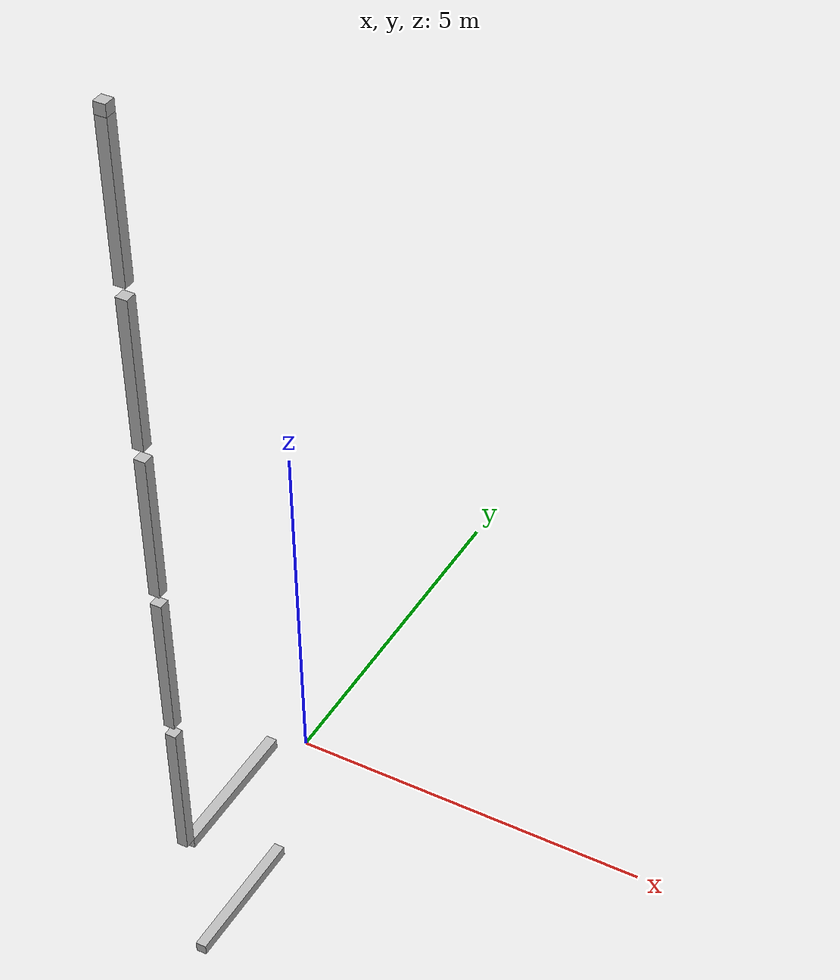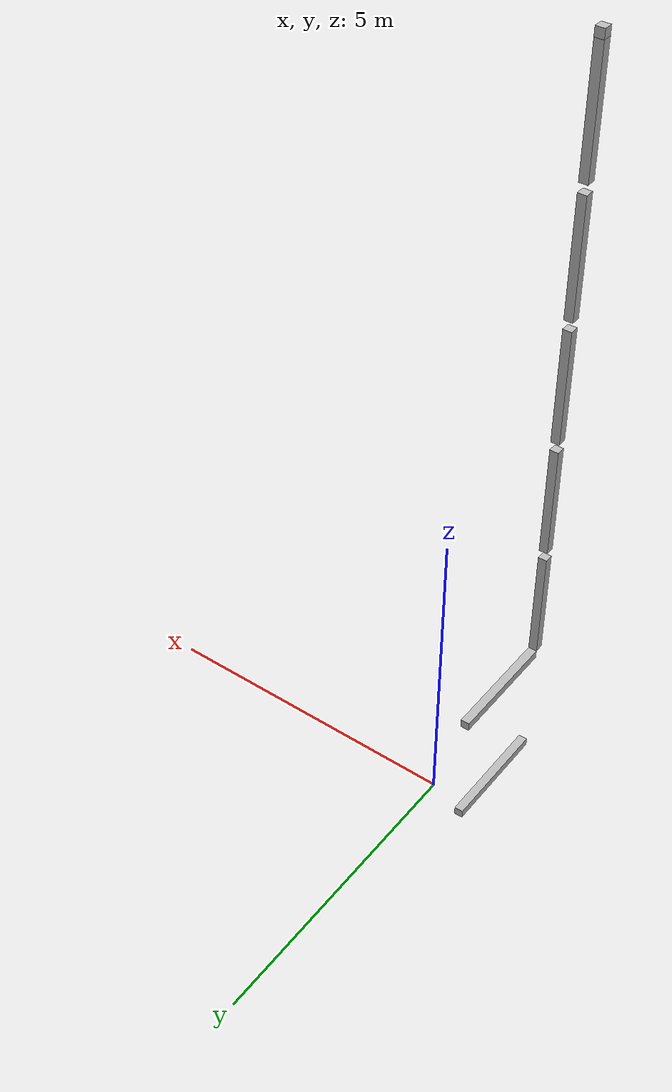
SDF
<sdf version="1.7">
 <world name="default">
  <model name="orthogonal_747_2.000.15_TS">
   <static>1</static>
   <link name="y_link_0_1_3">
    <inertial>
     <mass>1</mass>
     <inertia>
      <ixx>0.166667</ixx>
      <ixy>0</ixy>
      <ixz>0</ixz>
      <iyy>0.166667</iyy>
      <iyz>0</iyz>
      <izz>0.166667</izz>
     </inertia>
    </inertial>
    <pose>6.45 3.225 1.075 0 -0 0</pose>
    <visual name="visual_0">
     <laser_retro>232</laser_retro>
     <geometry><box><size>0.15 1e-06 0.15</size></box></geometry>
     <material>
      <script><name>Gazebo/Grey</name><uri>file://media/materials/scripts/gazebo.material</uri></script>
      <shader type="pixel"><normal_map>__default__</normal_map></shader>
      <ambient>0.678 0.498 0.659 1</ambient>
      <diffuse>0.7 0.7 0.7 1</diffuse>
      <specular>0.01 0.01 0.01 1</specular>
      <emissive>0 0 0 1</emissive>
     </material>
     <pose>0 -1 0 0 -0 0</pose>
     <transparency>1</transparency>
    </visual>
    <visual name="visual_1">
     <laser_retro>233</laser_retro>
     <geometry><box><size>0.15 1e-06 0.15</size></box></geometry>
     <material>
      <script><name>Gazebo/Grey</name><uri>file://media/materials/scripts/gazebo.material</uri></script>
      <shader type="pixel"><normal_map>__default__</normal_map></shader>
      <ambient>0.447 0.624 0.812 1</ambient>
      <diffuse>0.7 0.7 0.7 1</diffuse>
      <specular>0.01 0.01 0.01 1</specular>
      <emissive>0 0 0 1</emissive>
     </material>
     <pose>0 1 0 0 -0 0</pose>
     <transparency>1</transparency>
    </visual>
    <visual name="visual_2">
     <laser_retro>234</laser_retro>
     <geometry><box><size>0.15 2 1e-06</size></box></geometry>
     <material>
      <script><name>Gazebo/Grey</name><uri>file://media/materials/scripts/gazebo.material</uri></script>
      <shader type="pixel"><normal_map>__default__</normal_map></shader>
      <ambient>0.988 0.686 0.243 1</ambient>
      <diffuse>0.7 0.7 0.7 1</diffuse>
      <specular>0.01 0.01 0.01 1</specular>
      <emissive>0 0 0 1</emissive>
     </material>
     <pose>0 0 -0.075 0 -0 0</pose>
     <transparency>1</transparency>
    </visual>
    <visual name="visual_3">
     <laser_retro>235</laser_retro>
     <geometry><box><size>1e-06 2 0.15</size></box></geometry>
     <material>
      <script><name>Gazebo/Grey</name><uri>file://media/materials/scripts/gazebo.material</uri></script>
      <shader type="pixel"><normal_map>__default__</normal_map></shader>
      <ambient>0.988 0.914 0.31 1</ambient>
      <diffuse>0.7 0.7 0.7 1</diffuse>
      <specular>0.01 0.01 0.01 1</specular>
      <emissive>0 0 0 1</emissive>
     </material>
     <pose>0.075 0 0 0 -0 0</pose>
     <transparency>1</transparency>
    </visual>
    <visual name="visual_4">
     <laser_retro>236</laser_retro>
     <geometry><box><size>0.15 2 1e-06</size></box></geometry>
     <material>
      <script><name>Gazebo/Grey</name><uri>file://media/materials/scripts/gazebo.material</uri></script>
      <shader type="pixel"><normal_map>__default__</normal_map></shader>
      <ambient>0.937 0.161 0.161 1</ambient>
      <diffuse>0.7 0.7 0.7 1</diffuse>
      <specular>0.01 0.01 0.01 1</specular>
      <emissive>0 0 0 1</emissive>
     </material>
     <pose>0 0 0.075 0 -0 0</pose>
     <transparency>1</transparency>
    </visual>
    <visual name="visual_5">
     <laser_retro>237</laser_retro>
     <geometry><box><size>1e-06 2 0.15</size></box></geometry>
     <material>
      <script><name>Gazebo/Grey</name><uri>file://media/materials/scripts/gazebo.material</uri></script>
      <shader type="pixel"><normal_map>__default__</normal_map></shader>
      <ambient>0.541 0.886 0.204 1</ambient>
      <diffuse>0.7 0.7 0.7 1</diffuse>
      <specular>0.01 0.01 0.01 1</specular>
      <emissive>0 0 0 1</emissive>
     </material>
     <pose>-0.075 0 0 0 -0 0</pose>
     <transparency>1</transparency>
    </visual>
    <visual name="visual_texture">
     <geometry><box><size>0.149985 1.9998 0.149985</size></box></geometry>
     <material>
      <script>
       <uri>model://BASE_MODELS/simple_block_v2_textured/materials/scripts</uri>
       <uri>model://BASE_MODELS/simple_block_v2_textured/materials/textures</uri>
       <name>metal</name>
      </script>
     </material>
     <laser_retro>238</laser_retro>
    </visual>
    <collision name="collision">
     <geometry><box><size>0.15 2 0.15</size></box></geometry>
     <surface>
      <friction>
       <ode><mu>1</mu><mu2>1</mu2><fdir1>0 0 0</fdir1><slip1>0</slip1><slip2>0</slip2></ode>
       <torsional>
        <coefficient>1</coefficient>
        <patch_radius>0</patch_radius>
        <surface_radius>0</surface_radius>
        <use_patch_radius>1</use_patch_radius>
        <ode><slip>0</slip></ode>
       </torsional>
      </friction>
      <bounce><restitution_coefficient>0</restitution_coefficient><threshold>1e+06</threshold></bounce>
      <contact>
       <collide_without_contact>0</collide_without_contact>
       <collide_without_contact_bitmask>1</collide_without_contact_bitmask>
       <collide_bitmask>1</collide_bitmask>
       <ode>
        <soft_cfm>0</soft_cfm>
        <soft_erp>0.2</soft_erp>
        <kp>1e+13</kp>
        <kd>1</kd>
        <max_vel>0.01</max_vel>
        <min_depth>0</min_depth>
       </ode>
       <bullet>
        <split_impulse>1</split_impulse>
        <split_impulse_penetration_threshold>-0.01</split_impulse_penetration_threshold>
        <soft_cfm>0</soft_cfm>
        <soft_erp>0.2</soft_erp>
        <kp>1e+13</kp>
        <kd>1</kd>
       </bullet>
      </contact>
     </surface>
    </collision>
   </link>
   <link name="y_link_1_1_3">
    <inertial>
     <mass>1</mass>
     <inertia>
      <ixx>0.166667</ixx>
      <ixy>0</ixy>
      <ixz>0</ixz>
      <iyy>0.166667</iyy>
      <iyz>0</iyz>
      <izz>0.166667</izz>
     </inertia>
    </inertial>
    <pose>6.45 3.225 3.225 0 -0 0</pose>
    <visual name="visual_0">
     <laser_retro>1044</laser_retro>
     <geometry><box><size>0.15 1e-06 0.15</size></box></geometry>
     <material>
      <script><name>Gazebo/Grey</name><uri>file://media/materials/scripts/gazebo.material</uri></script>
      <shader type="pixel"><normal_map>__default__</normal_map></shader>
      <ambient>0.678 0.498 0.659 1</ambient>
      <diffuse>0.7 0.7 0.7 1</diffuse>
      <specular>0.01 0.01 0.01 1</specular>
      <emissive>0 0 0 1</emissive>
     </material>
     <pose>0 -1 0 0 -0 0</pose>
     <transparency>1</transparency>
    </visual>
    <visual name="visual_1">
     <laser_retro>1045</laser_retro>
     <geometry><box><size>0.15 1e-06 0.15</size></box></geometry>
     <material>
      <script><name>Gazebo/Grey</name><uri>file://media/materials/scripts/gazebo.material</uri></script>
      <shader type="pixel"><normal_map>__default__</normal_map></shader>
      <ambient>0.447 0.624 0.812 1</ambient>
      <diffuse>0.7 0.7 0.7 1</diffuse>
      <specular>0.01 0.01 0.01 1</specular>
      <emissive>0 0 0 1</emissive>
     </material>
     <pose>0 1 0 0 -0 0</pose>
     <transparency>1</transparency>
    </visual>
    <visual name="visual_2">
     <laser_retro>1046</laser_retro>
     <geometry><box><size>0.15 2 1e-06</size></box></geometry>
     <material>
      <script><name>Gazebo/Grey</name><uri>file://media/materials/scripts/gazebo.material</uri></script>
      <shader type="pixel"><normal_map>__default__</normal_map></shader>
      <ambient>0.988 0.686 0.243 1</ambient>
      <diffuse>0.7 0.7 0.7 1</diffuse>
      <specular>0.01 0.01 0.01 1</specular>
      <emissive>0 0 0 1</emissive>
     </material>
     <pose>0 0 -0.075 0 -0 0</pose>
     <transparency>1</transparency>
    </visual>
    <visual name="visual_3">
     <laser_retro>1047</laser_retro>
     <geometry><box><size>1e-06 2 0.15</size></box></geometry>
     <material>
      <script><name>Gazebo/Grey</name><uri>file://media/materials/scripts/gazebo.material</uri></script>
      <shader type="pixel"><normal_map>__default__</normal_map></shader>
      <ambient>0.988 0.914 0.31 1</ambient>
      <diffuse>0.7 0.7 0.7 1</diffuse>
      <specular>0.01 0.01 0.01 1</specular>
      <emissive>0 0 0 1</emissive>
     </material>
     <pose>0.075 0 0 0 -0 0</pose>
     <transparency>1</transparency>
    </visual>
    <visual name="visual_4">
     <laser_retro>1048</laser_retro>
     <geometry><box><size>0.15 2 1e-06</size></box></geometry>
     <material>
      <script><name>Gazebo/Grey</name><uri>file://media/materials/scripts/gazebo.material</uri></script>
      <shader type="pixel"><normal_map>__default__</normal_map></shader>
      <ambient>0.937 0.161 0.161 1</ambient>
      <diffuse>0.7 0.7 0.7 1</diffuse>
      <specular>0.01 0.01 0.01 1</specular>
      <emissive>0 0 0 1</emissive>
     </material>
     <pose>0 0 0.075 0 -0 0</pose>
     <transparency>1</transparency>
    </visual>
    <visual name="visual_5">
     <laser_retro>1049</laser_retro>
     <geometry><box><size>1e-06 2 0.15</size></box></geometry>
     <material>
      <script><name>Gazebo/Grey</name><uri>file://media/materials/scripts/gazebo.material</uri></script>
      <shader type="pixel"><normal_map>__default__</normal_map></shader>
      <ambient>0.541 0.886 0.204 1</ambient>
      <diffuse>0.7 0.7 0.7 1</diffuse>
      <specular>0.01 0.01 0.01 1</specular>
      <emissive>0 0 0 1</emissive>
     </material>
     <pose>-0.075 0 0 0 -0 0</pose>
     <transparency>1</transparency>
    </visual>
    <visual name="visual_texture">
     <geometry><box><size>0.149985 1.9998 0.149985</size></box></geometry>
     <material>
      <script>
       <uri>model://BASE_MODELS/simple_block_v2_textured/materials/scripts</uri>
       <uri>model://BASE_MODELS/simple_block_v2_textured/materials/textures</uri>
       <name>metal</name>
      </script>
     </material>
     <laser_retro>1050</laser_retro>
    </visual>
    <collision name="collision">
     <geometry><box><size>0.15 2 0.15</size></box></geometry>
     <surface>
      <friction>
       <ode><mu>1</mu><mu2>1</mu2><fdir1>0 0 0</fdir1><slip1>0</slip1><slip2>0</slip2></ode>
       <torsional>
        <coefficient>1</coefficient>
        <patch_radius>0</patch_radius>
        <surface_radius>0</surface_radius>
        <use_patch_radius>1</use_patch_radius>
        <ode><slip>0</slip></ode>
       </torsional>
      </friction>
      <bounce><restitution_coefficient>0</restitution_coefficient><threshold>1e+06</threshold></bounce>
      <contact>
       <collide_without_contact>0</collide_without_contact>
       <collide_without_contact_bitmask>1</collide_without_contact_bitmask>
       <collide_bitmask>1</collide_bitmask>
       <ode>
        <soft_cfm>0</soft_cfm>
        <soft_erp>0.2</soft_erp>
        <kp>1e+13</kp>
        <kd>1</kd>
        <max_vel>0.01</max_vel>
        <min_depth>0</min_depth>
       </ode>
       <bullet>
        <split_impulse>1</split_impulse>
        <split_impulse_penetration_threshold>-0.01</split_impulse_penetration_threshold>
        <soft_cfm>0</soft_cfm>
        <soft_erp>0.2</soft_erp>
        <kp>1e+13</kp>
        <kd>1</kd>
       </bullet>
      </contact>
     </surface>
    </collision>
   </link>
   <link name="z_link_2_1_3">
    <inertial>
     <mass>1</mass>
     <inertia>
      <ixx>0.166667</ixx>
      <ixy>0</ixy>
      <ixz>0</ixz>
      <iyy>0.166667</iyy>
      <iyz>0</iyz>
      <izz>0.166667</izz>
     </inertia>
    </inertial>
    <pose>6.45 2.15 4.3 0 -0 0</pose>
    <visual name="visual_0">
     <laser_retro>1954</laser_retro>
     <geometry><box><size>0.15 1e-06 2</size></box></geometry>
     <material>
      <script><name>Gazebo/Grey</name><uri>file://media/materials/scripts/gazebo.material</uri></script>
      <shader type="pixel"><normal_map>__default__</normal_map></shader>
      <ambient>0.678 0.498 0.659 1</ambient>
      <diffuse>0.7 0.7 0.7 1</diffuse>
      <specular>0.01 0.01 0.01 1</specular>
      <emissive>0 0 0 1</emissive>
     </material>
     <pose>0 -0.075 0 0 -0 0</pose>
     <transparency>1</transparency>
    </visual>
    <visual name="visual_1">
     <laser_retro>1955</laser_retro>
     <geometry><box><size>0.15 1e-06 2</size></box></geometry>
     <material>
      <script><name>Gazebo/Grey</name><uri>file://media/materials/scripts/gazebo.material</uri></script>
      <shader type="pixel"><normal_map>__default__</normal_map></shader>
      <ambient>0.447 0.624 0.812 1</ambient>
      <diffuse>0.7 0.7 0.7 1</diffuse>
      <specular>0.01 0.01 0.01 1</specular>
      <emissive>0 0 0 1</emissive>
     </material>
     <pose>0 0.075 0 0 -0 0</pose>
     <transparency>1</transparency>
    </visual>
    <visual name="visual_2">
     <laser_retro>1956</laser_retro>
     <geometry><box><size>0.15 0.15 1e-06</size></box></geometry>
     <material>
      <script><name>Gazebo/Grey</name><uri>file://media/materials/scripts/gazebo.material</uri></script>
      <shader type="pixel"><normal_map>__default__</normal_map></shader>
      <ambient>0.988 0.686 0.243 1</ambient>
      <diffuse>0.7 0.7 0.7 1</diffuse>
      <specular>0.01 0.01 0.01 1</specular>
      <emissive>0 0 0 1</emissive>
     </material>
     <pose>0 0 -1 0 -0 0</pose>
     <transparency>1</transparency>
    </visual>
    <visual name="visual_3">
     <laser_retro>1957</laser_retro>
     <geometry><box><size>1e-06 0.15 2</size></box></geometry>
     <material>
      <script><name>Gazebo/Grey</name><uri>file://media/materials/scripts/gazebo.material</uri></script>
      <shader type="pixel"><normal_map>__default__</normal_map></shader>
      <ambient>0.988 0.914 0.31 1</ambient>
      <diffuse>0.7 0.7 0.7 1</diffuse>
      <specular>0.01 0.01 0.01 1</specular>
      <emissive>0 0 0 1</emissive>
     </material>
     <pose>0.075 0 0 0 -0 0</pose>
     <transparency>1</transparency>
    </visual>
    <visual name="visual_4">
     <laser_retro>1958</laser_retro>
     <geometry><box><size>0.15 0.15 1e-06</size></box></geometry>
     <material>
      <script><name>Gazebo/Grey</name><uri>file://media/materials/scripts/gazebo.material</uri></script>
      <shader type="pixel"><normal_map>__default__</normal_map></shader>
      <ambient>0.937 0.161 0.161 1</ambient>
      <diffuse>0.7 0.7 0.7 1</diffuse>
      <specular>0.01 0.01 0.01 1</specular>
      <emissive>0 0 0 1</emissive>
     </material>
     <pose>0 0 1 0 -0 0</pose>
     <transparency>1</transparency>
    </visual>
    <visual name="visual_5">
     <laser_retro>1959</laser_retro>
     <geometry><box><size>1e-06 0.15 2</size></box></geometry>
     <material>
      <script><name>Gazebo/Grey</name><uri>file://media/materials/scripts/gazebo.material</uri></script>
      <shader type="pixel"><normal_map>__default__</normal_map></shader>
      <ambient>0.541 0.886 0.204 1</ambient>
      <diffuse>0.7 0.7 0.7 1</diffuse>
      <specular>0.01 0.01 0.01 1</specular>
      <emissive>0 0 0 1</emissive>
     </material>
     <pose>-0.075 0 0 0 -0 0</pose>
     <transparency>1</transparency>
    </visual>
    <visual name="visual_texture">
     <geometry><box><size>0.149985 0.149985 1.9998</size></box></geometry>
     <material>
      <script>
       <uri>model://BASE_MODELS/simple_block_v2_textured/materials/scripts</uri>
       <uri>model://BASE_MODELS/simple_block_v2_textured/materials/textures</uri>
       <name>metal</name>
      </script>
     </material>
     <laser_retro>1960</laser_retro>
    </visual>
    <collision name="collision">
     <geometry><box><size>0.15 0.15 2</size></box></geometry>
     <surface>
      <friction>
       <ode><mu>1</mu><mu2>1</mu2><fdir1>0 0 0</fdir1><slip1>0</slip1><slip2>0</slip2></ode>
       <torsional>
        <coefficient>1</coefficient>
        <patch_radius>0</patch_radius>
        <surface_radius>0</surface_radius>
        <use_patch_radius>1</use_patch_radius>
        <ode><slip>0</slip></ode>
       </torsional>
      </friction>
      <bounce><restitution_coefficient>0</restitution_coefficient><threshold>1e+06</threshold></bounce>
      <contact>
       <collide_without_contact>0</collide_without_contact>
       <collide_without_contact_bitmask>1</collide_without_contact_bitmask>
       <collide_bitmask>1</collide_bitmask>
       <ode>
        <soft_cfm>0</soft_cfm>
        <soft_erp>0.2</soft_erp>
        <kp>1e+13</kp>
        <kd>1</kd>
        <max_vel>0.01</max_vel>
        <min_depth>0</min_depth>
       </ode>
       <bullet>
        <split_impulse>1</split_impulse>
        <split_impulse_penetration_threshold>-0.01</split_impulse_penetration_threshold>
        <soft_cfm>0</soft_cfm>
        <soft_erp>0.2</soft_erp>
        <kp>1e+13</kp>
        <kd>1</kd>
       </bullet>
      </contact>
     </surface>
    </collision>
   </link>
   <link name="z_link_3_1_3">
    <inertial>
     <mass>1</mass>
     <inertia>
      <ixx>0.166667</ixx>
      <ixy>0</ixy>
      <ixz>0</ixz>
      <iyy>0.166667</iyy>
      <iyz>0</iyz>
      <izz>0.166667</izz>
     </inertia>
    </inertial>
    <pose>6.45 2.15 6.45 0 -0 0</pose>
    <visual name="visual_0">
     <laser_retro>2857</laser_retro>
     <geometry><box><size>0.15 1e-06 2</size></box></geometry>
     <material>
      <script><name>Gazebo/Grey</name><uri>file://media/materials/scripts/gazebo.material</uri></script>
      <shader type="pixel"><normal_map>__default__</normal_map></shader>
      <ambient>0.678 0.498 0.659 1</ambient>
      <diffuse>0.7 0.7 0.7 1</diffuse>
      <specular>0.01 0.01 0.01 1</specular>
      <emissive>0 0 0 1</emissive>
     </material>
     <pose>0 -0.075 0 0 -0 0</pose>
     <transparency>1</transparency>
    </visual>
    <visual name="visual_1">
     <laser_retro>2858</laser_retro>
     <geometry><box><size>0.15 1e-06 2</size></box></geometry>
     <material>
      <script><name>Gazebo/Grey</name><uri>file://media/materials/scripts/gazebo.material</uri></script>
      <shader type="pixel"><normal_map>__default__</normal_map></shader>
      <ambient>0.447 0.624 0.812 1</ambient>
      <diffuse>0.7 0.7 0.7 1</diffuse>
      <specular>0.01 0.01 0.01 1</specular>
      <emissive>0 0 0 1</emissive>
     </material>
     <pose>0 0.075 0 0 -0 0</pose>
     <transparency>1</transparency>
    </visual>
    <visual name="visual_2">
     <laser_retro>2859</laser_retro>
     <geometry><box><size>0.15 0.15 1e-06</size></box></geometry>
     <material>
      <script><name>Gazebo/Grey</name><uri>file://media/materials/scripts/gazebo.material</uri></script>
      <shader type="pixel"><normal_map>__default__</normal_map></shader>
      <ambient>0.988 0.686 0.243 1</ambient>
      <diffuse>0.7 0.7 0.7 1</diffuse>
      <specular>0.01 0.01 0.01 1</specular>
      <emissive>0 0 0 1</emissive>
     </material>
     <pose>0 0 -1 0 -0 0</pose>
     <transparency>1</transparency>
    </visual>
    <visual name="visual_3">
     <laser_retro>2860</laser_retro>
     <geometry><box><size>1e-06 0.15 2</size></box></geometry>
     <material>
      <script><name>Gazebo/Grey</name><uri>file://media/materials/scripts/gazebo.material</uri></script>
      <shader type="pixel"><normal_map>__default__</normal_map></shader>
      <ambient>0.988 0.914 0.31 1</ambient>
      <diffuse>0.7 0.7 0.7 1</diffuse>
      <specular>0.01 0.01 0.01 1</specular>
      <emissive>0 0 0 1</emissive>
     </material>
     <pose>0.075 0 0 0 -0 0</pose>
     <transparency>1</transparency>
    </visual>
    <visual name="visual_4">
     <laser_retro>2861</laser_retro>
     <geometry><box><size>0.15 0.15 1e-06</size></box></geometry>
     <material>
      <script><name>Gazebo/Grey</name><uri>file://media/materials/scripts/gazebo.material</uri></script>
      <shader type="pixel"><normal_map>__default__</normal_map></shader>
      <ambient>0.937 0.161 0.161 1</ambient>
      <diffuse>0.7 0.7 0.7 1</diffuse>
      <specular>0.01 0.01 0.01 1</specular>
      <emissive>0 0 0 1</emissive>
     </material>
     <pose>0 0 1 0 -0 0</pose>
     <transparency>1</transparency>
    </visual>
    <visual name="visual_5">
     <laser_retro>2862</laser_retro>
     <geometry><box><size>1e-06 0.15 2</size></box></geometry>
     <material>
      <script><name>Gazebo/Grey</name><uri>file://media/materials/scripts/gazebo.material</uri></script>
      <shader type="pixel"><normal_map>__default__</normal_map></shader>
      <ambient>0.541 0.886 0.204 1</ambient>
      <diffuse>0.7 0.7 0.7 1</diffuse>
      <specular>0.01 0.01 0.01 1</specular>
      <emissive>0 0 0 1</emissive>
     </material>
     <pose>-0.075 0 0 0 -0 0</pose>
     <transparency>1</transparency>
    </visual>
    <visual name="visual_texture">
     <geometry><box><size>0.149985 0.149985 1.9998</size></box></geometry>
     <material>
      <script>
       <uri>model://BASE_MODELS/simple_block_v2_textured/materials/scripts</uri>
       <uri>model://BASE_MODELS/simple_block_v2_textured/materials/textures</uri>
       <name>metal</name>
      </script>
     </material>
     <laser_retro>2863</laser_retro>
    </visual>
    <collision name="collision">
     <geometry><box><size>0.15 0.15 2</size></box></geometry>
     <surface>
      <friction>
       <ode><mu>1</mu><mu2>1</mu2><fdir1>0 0 0</fdir1><slip1>0</slip1><slip2>0</slip2></ode>
       <torsional>
        <coefficient>1</coefficient>
        <patch_radius>0</patch_radius>
        <surface_radius>0</surface_radius>
        <use_patch_radius>1</use_patch_radius>
        <ode><slip>0</slip></ode>
       </torsional>
      </friction>
      <bounce><restitution_coefficient>0</restitution_coefficient><threshold>1e+06</threshold></bounce>
      <contact>
       <collide_without_contact>0</collide_without_contact>
       <collide_without_contact_bitmask>1</collide_without_contact_bitmask>
       <collide_bitmask>1</collide_bitmask>
       <ode>
        <soft_cfm>0</soft_cfm>
        <soft_erp>0.2</soft_erp>
        <kp>1e+13</kp>
        <kd>1</kd>
        <max_vel>0.01</max_vel>
        <min_depth>0</min_depth>
       </ode>
       <bullet>
        <split_impulse>1</split_impulse>
        <split_impulse_penetration_threshold>-0.01</split_impulse_penetration_threshold>
        <soft_cfm>0</soft_cfm>
        <soft_erp>0.2</soft_erp>
        <kp>1e+13</kp>
        <kd>1</kd>
       </bullet>
      </contact>
     </surface>
    </collision>
   </link>
   <link name="z_link_4_1_3">
    <inertial>
     <mass>1</mass>
     <inertia>
      <ixx>0.166667</ixx>
      <ixy>0</ixy>
      <ixz>0</ixz>
      <iyy>0.166667</iyy>
      <iyz>0</iyz>
      <izz>0.166667</izz>
     </inertia>
    </inertial>
    <pose>6.45 2.15 8.6 0 -0 0</pose>
    <visual name="visual_0">
     <laser_retro>3760</laser_retro>
     <geometry><box><size>0.15 1e-06 2</size></box></geometry>
     <material>
      <script><name>Gazebo/Grey</name><uri>file://media/materials/scripts/gazebo.material</uri></script>
      <shader type="pixel"><normal_map>__default__</normal_map></shader>
      <ambient>0.678 0.498 0.659 1</ambient>
      <diffuse>0.7 0.7 0.7 1</diffuse>
      <specular>0.01 0.01 0.01 1</specular>
      <emissive>0 0 0 1</emissive>
     </material>
     <pose>0 -0.075 0 0 -0 0</pose>
     <transparency>1</transparency>
    </visual>
    <visual name="visual_1">
     <laser_retro>3761</laser_retro>
     <geometry><box><size>0.15 1e-06 2</size></box></geometry>
     <material>
      <script><name>Gazebo/Grey</name><uri>file://media/materials/scripts/gazebo.material</uri></script>
      <shader type="pixel"><normal_map>__default__</normal_map></shader>
      <ambient>0.447 0.624 0.812 1</ambient>
      <diffuse>0.7 0.7 0.7 1</diffuse>
      <specular>0.01 0.01 0.01 1</specular>
      <emissive>0 0 0 1</emissive>
     </material>
     <pose>0 0.075 0 0 -0 0</pose>
     <transparency>1</transparency>
    </visual>
    <visual name="visual_2">
     <laser_retro>3762</laser_retro>
     <geometry><box><size>0.15 0.15 1e-06</size></box></geometry>
     <material>
      <script><name>Gazebo/Grey</name><uri>file://media/materials/scripts/gazebo.material</uri></script>
      <shader type="pixel"><normal_map>__default__</normal_map></shader>
      <ambient>0.988 0.686 0.243 1</ambient>
      <diffuse>0.7 0.7 0.7 1</diffuse>
      <specular>0.01 0.01 0.01 1</specular>
      <emissive>0 0 0 1</emissive>
     </material>
     <pose>0 0 -1 0 -0 0</pose>
     <transparency>1</transparency>
    </visual>
    <visual name="visual_3">
     <laser_retro>3763</laser_retro>
     <geometry><box><size>1e-06 0.15 2</size></box></geometry>
     <material>
      <script><name>Gazebo/Grey</name><uri>file://media/materials/scripts/gazebo.material</uri></script>
      <shader type="pixel"><normal_map>__default__</normal_map></shader>
      <ambient>0.988 0.914 0.31 1</ambient>
      <diffuse>0.7 0.7 0.7 1</diffuse>
      <specular>0.01 0.01 0.01 1</specular>
      <emissive>0 0 0 1</emissive>
     </material>
     <pose>0.075 0 0 0 -0 0</pose>
     <transparency>1</transparency>
    </visual>
    <visual name="visual_4">
     <laser_retro>3764</laser_retro>
     <geometry><box><size>0.15 0.15 1e-06</size></box></geometry>
     <material>
      <script><name>Gazebo/Grey</name><uri>file://media/materials/scripts/gazebo.material</uri></script>
      <shader type="pixel"><normal_map>__default__</normal_map></shader>
      <ambient>0.937 0.161 0.161 1</ambient>
      <diffuse>0.7 0.7 0.7 1</diffuse>
      <specular>0.01 0.01 0.01 1</specular>
      <emissive>0 0 0 1</emissive>
     </material>
     <pose>0 0 1 0 -0 0</pose>
     <transparency>1</transparency>
    </visual>
    <visual name="visual_5">
     <laser_retro>3765</laser_retro>
     <geometry><box><size>1e-06 0.15 2</size></box></geometry>
     <material>
      <script><name>Gazebo/Grey</name><uri>file://media/materials/scripts/gazebo.material</uri></script>
      <shader type="pixel"><normal_map>__default__</normal_map></shader>
      <ambient>0.541 0.886 0.204 1</ambient>
      <diffuse>0.7 0.7 0.7 1</diffuse>
      <specular>0.01 0.01 0.01 1</specular>
      <emissive>0 0 0 1</emissive>
     </material>
     <pose>-0.075 0 0 0 -0 0</pose>
     <transparency>1</transparency>
    </visual>
    <visual name="visual_texture">
     <geometry><box><size>0.149985 0.149985 1.9998</size></box></geometry>
     <material>
      <script>
       <uri>model://BASE_MODELS/simple_block_v2_textured/materials/scripts</uri>
       <uri>model://BASE_MODELS/simple_block_v2_textured/materials/textures</uri>
       <name>metal</name>
      </script>
     </material>
     <laser_retro>3766</laser_retro>
    </visual>
    <collision name="collision">
     <geometry><box><size>0.15 0.15 2</size></box></geometry>
     <surface>
      <friction>
       <ode><mu>1</mu><mu2>1</mu2><fdir1>0 0 0</fdir1><slip1>0</slip1><slip2>0</slip2></ode>
       <torsional>
        <coefficient>1</coefficient>
        <patch_radius>0</patch_radius>
        <surface_radius>0</surface_radius>
        <use_patch_radius>1</use_patch_radius>
        <ode><slip>0</slip></ode>
       </torsional>
      </friction>
      <bounce><restitution_coefficient>0</restitution_coefficient><threshold>1e+06</threshold></bounce>
      <contact>
       <collide_without_contact>0</collide_without_contact>
       <collide_without_contact_bitmask>1</collide_without_contact_bitmask>
       <collide_bitmask>1</collide_bitmask>
       <ode>
        <soft_cfm>0</soft_cfm>
        <soft_erp>0.2</soft_erp>
        <kp>1e+13</kp>
        <kd>1</kd>
        <max_vel>0.01</max_vel>
        <min_depth>0</min_depth>
       </ode>
       <bullet>
        <split_impulse>1</split_impulse>
        <split_impulse_penetration_threshold>-0.01</split_impulse_penetration_threshold>
        <soft_cfm>0</soft_cfm>
        <soft_erp>0.2</soft_erp>
        <kp>1e+13</kp>
        <kd>1</kd>
       </bullet>
      </contact>
     </surface>
    </collision>
   </link>
   <link name="z_link_5_1_3">
    <inertial>
     <mass>1</mass>
     <inertia>
      <ixx>0.166667</ixx>
      <ixy>0</ixy>
      <ixz>0</ixz>
      <iyy>0.166667</iyy>
      <iyz>0</iyz>
      <izz>0.166667</izz>
     </inertia>
    </inertial>
    <pose>6.45 2.15 10.75 0 -0 0</pose>
    <visual name="visual_0">
     <laser_retro>4663</laser_retro>
     <geometry><box><size>0.15 1e-06 2</size></box></geometry>
     <material>
      <script><name>Gazebo/Grey</name><uri>file://media/materials/scripts/gazebo.material</uri></script>
      <shader type="pixel"><normal_map>__default__</normal_map></shader>
      <ambient>0.678 0.498 0.659 1</ambient>
      <diffuse>0.7 0.7 0.7 1</diffuse>
      <specular>0.01 0.01 0.01 1</specular>
      <emissive>0 0 0 1</emissive>
     </material>
     <pose>0 -0.075 0 0 -0 0</pose>
     <transparency>1</transparency>
    </visual>
    <visual name="visual_1">
     <laser_retro>4664</laser_retro>
     <geometry><box><size>0.15 1e-06 2</size></box></geometry>
     <material>
      <script><name>Gazebo/Grey</name><uri>file://media/materials/scripts/gazebo.material</uri></script>
      <shader type="pixel"><normal_map>__default__</normal_map></shader>
      <ambient>0.447 0.624 0.812 1</ambient>
      <diffuse>0.7 0.7 0.7 1</diffuse>
      <specular>0.01 0.01 0.01 1</specular>
      <emissive>0 0 0 1</emissive>
     </material>
     <pose>0 0.075 0 0 -0 0</pose>
     <transparency>1</transparency>
    </visual>
    <visual name="visual_2">
     <laser_retro>4665</laser_retro>
     <geometry><box><size>0.15 0.15 1e-06</size></box></geometry>
     <material>
      <script><name>Gazebo/Grey</name><uri>file://media/materials/scripts/gazebo.material</uri></script>
      <shader type="pixel"><normal_map>__default__</normal_map></shader>
      <ambient>0.988 0.686 0.243 1</ambient>
      <diffuse>0.7 0.7 0.7 1</diffuse>
      <specular>0.01 0.01 0.01 1</specular>
      <emissive>0 0 0 1</emissive>
     </material>
     <pose>0 0 -1 0 -0 0</pose>
     <transparency>1</transparency>
    </visual>
    <visual name="visual_3">
     <laser_retro>4666</laser_retro>
     <geometry><box><size>1e-06 0.15 2</size></box></geometry>
     <material>
      <script><name>Gazebo/Grey</name><uri>file://media/materials/scripts/gazebo.material</uri></script>
      <shader type="pixel"><normal_map>__default__</normal_map></shader>
      <ambient>0.988 0.914 0.31 1</ambient>
      <diffuse>0.7 0.7 0.7 1</diffuse>
      <specular>0.01 0.01 0.01 1</specular>
      <emissive>0 0 0 1</emissive>
     </material>
     <pose>0.075 0 0 0 -0 0</pose>
     <transparency>1</transparency>
    </visual>
    <visual name="visual_4">
     <laser_retro>4667</laser_retro>
     <geometry><box><size>0.15 0.15 1e-06</size></box></geometry>
     <material>
      <script><name>Gazebo/Grey</name><uri>file://media/materials/scripts/gazebo.material</uri></script>
      <shader type="pixel"><normal_map>__default__</normal_map></shader>
      <ambient>0.937 0.161 0.161 1</ambient>
      <diffuse>0.7 0.7 0.7 1</diffuse>
      <specular>0.01 0.01 0.01 1</specular>
      <emissive>0 0 0 1</emissive>
     </material>
     <pose>0 0 1 0 -0 0</pose>
     <transparency>1</transparency>
    </visual>
    <visual name="visual_5">
     <laser_retro>4668</laser_retro>
     <geometry><box><size>1e-06 0.15 2</size></box></geometry>
     <material>
      <script><name>Gazebo/Grey</name><uri>file://media/materials/scripts/gazebo.material</uri></script>
      <shader type="pixel"><normal_map>__default__</normal_map></shader>
      <ambient>0.541 0.886 0.204 1</ambient>
      <diffuse>0.7 0.7 0.7 1</diffuse>
      <specular>0.01 0.01 0.01 1</specular>
      <emissive>0 0 0 1</emissive>
     </material>
     <pose>-0.075 0 0 0 -0 0</pose>
     <transparency>1</transparency>
    </visual>
    <visual name="visual_texture">
     <geometry><box><size>0.149985 0.149985 1.9998</size></box></geometry>
     <material>
      <script>
       <uri>model://BASE_MODELS/simple_block_v2_textured/materials/scripts</uri>
       <uri>model://BASE_MODELS/simple_block_v2_textured/materials/textures</uri>
       <name>metal</name>
      </script>
     </material>
     <laser_retro>4669</laser_retro>
    </visual>
    <collision name="collision">
     <geometry><box><size>0.15 0.15 2</size></box></geometry>
     <surface>
      <friction>
       <ode><mu>1</mu><mu2>1</mu2><fdir1>0 0 0</fdir1><slip1>0</slip1><slip2>0</slip2></ode>
       <torsional>
        <coefficient>1</coefficient>
        <patch_radius>0</patch_radius>
        <surface_radius>0</surface_radius>
        <use_patch_radius>1</use_patch_radius>
        <ode><slip>0</slip></ode>
       </torsional>
      </friction>
      <bounce><restitution_coefficient>0</restitution_coefficient><threshold>1e+06</threshold></bounce>
      <contact>
       <collide_without_contact>0</collide_without_contact>
       <collide_without_contact_bitmask>1</collide_without_contact_bitmask>
       <collide_bitmask>1</collide_bitmask>
       <ode>
        <soft_cfm>0</soft_cfm>
        <soft_erp>0.2</soft_erp>
        <kp>1e+13</kp>
        <kd>1</kd>
        <max_vel>0.01</max_vel>
        <min_depth>0</min_depth>
       </ode>
       <bullet>
        <split_impulse>1</split_impulse>
        <split_impulse_penetration_threshold>-0.01</split_impulse_penetration_threshold>
        <soft_cfm>0</soft_cfm>
        <soft_erp>0.2</soft_erp>
        <kp>1e+13</kp>
        <kd>1</kd>
       </bullet>
      </contact>
     </surface>
    </collision>
   </link>
   <link name="u_link_6_1_3">
    <inertial>
     <mass>1</mass>
     <inertia>
      <ixx>0.166667</ixx>
      <ixy>0</ixy>
      <ixz>0</ixz>
      <iyy>0.166667</iyy>
      <iyz>0</iyz>
      <izz>0.166667</izz>
     </inertia>
    </inertial>
    <pose>6.45 2.15 13.975 0 -0 0</pose>
    <visual name="visual_0">
     <laser_retro>5580</laser_retro>
     <geometry><box><size>0.15 1e-06 0.15</size></box></geometry>
     <material>
      <script><name>Gazebo/Grey</name><uri>file://media/materials/scripts/gazebo.material</uri></script>
      <shader type="pixel"><normal_map>__default__</normal_map></shader>
      <ambient>0.678 0.498 0.659 1</ambient>
      <diffuse>0.7 0.7 0.7 1</diffuse>
      <specular>0.01 0.01 0.01 1</specular>
      <emissive>0 0 0 1</emissive>
     </material>
     <pose>0 -0.075 0 0 -0 0</pose>
     <transparency>1</transparency>
    </visual>
    <visual name="visual_1">
     <laser_retro>5581</laser_retro>
     <geometry><box><size>0.15 1e-06 0.15</size></box></geometry>
     <material>
      <script><name>Gazebo/Grey</name><uri>file://media/materials/scripts/gazebo.material</uri></script>
      <shader type="pixel"><normal_map>__default__</normal_map></shader>
      <ambient>0.447 0.624 0.812 1</ambient>
      <diffuse>0.7 0.7 0.7 1</diffuse>
      <specular>0.01 0.01 0.01 1</specular>
      <emissive>0 0 0 1</emissive>
     </material>
     <pose>0 0.075 0 0 -0 0</pose>
     <transparency>1</transparency>
    </visual>
    <visual name="visual_2">
     <laser_retro>5582</laser_retro>
     <geometry><box><size>0.15 0.15 1e-06</size></box></geometry>
     <material>
      <script><name>Gazebo/Grey</name><uri>file://media/materials/scripts/gazebo.material</uri></script>
      <shader type="pixel"><normal_map>__default__</normal_map></shader>
      <ambient>0.988 0.686 0.243 1</ambient>
      <diffuse>0.7 0.7 0.7 1</diffuse>
      <specular>0.01 0.01 0.01 1</specular>
      <emissive>0 0 0 1</emissive>
     </material>
     <pose>0 0 -0.075 0 -0 0</pose>
     <transparency>1</transparency>
    </visual>
    <visual name="visual_3">
     <laser_retro>5583</laser_retro>
     <geometry><box><size>1e-06 0.15 0.15</size></box></geometry>
     <material>
      <script><name>Gazebo/Grey</name><uri>file://media/materials/scripts/gazebo.material</uri></script>
      <shader type="pixel"><normal_map>__default__</normal_map></shader>
      <ambient>0.988 0.914 0.31 1</ambient>
      <diffuse>0.7 0.7 0.7 1</diffuse>
      <specular>0.01 0.01 0.01 1</specular>
      <emissive>0 0 0 1</emissive>
     </material>
     <pose>0.075 0 0 0 -0 0</pose>
     <transparency>1</transparency>
    </visual>
    <visual name="visual_4">
     <laser_retro>5584</laser_retro>
     <geometry><box><size>0.15 0.15 1e-06</size></box></geometry>
     <material>
      <script><name>Gazebo/Grey</name><uri>file://media/materials/scripts/gazebo.material</uri></script>
      <shader type="pixel"><normal_map>__default__</normal_map></shader>
      <ambient>0.937 0.161 0.161 1</ambient>
      <diffuse>0.7 0.7 0.7 1</diffuse>
      <specular>0.01 0.01 0.01 1</specular>
      <emissive>0 0 0 1</emissive>
     </material>
     <pose>0 0 0.075 0 -0 0</pose>
     <transparency>1</transparency>
    </visual>
    <visual name="visual_5">
     <laser_retro>5585</laser_retro>
     <geometry><box><size>1e-06 0.15 0.15</size></box></geometry>
     <material>
      <script><name>Gazebo/Grey</name><uri>file://media/materials/scripts/gazebo.material</uri></script>
      <shader type="pixel"><normal_map>__default__</normal_map></shader>
      <ambient>0.541 0.886 0.204 1</ambient>
      <diffuse>0.7 0.7 0.7 1</diffuse>
      <specular>0.01 0.01 0.01 1</specular>
      <emissive>0 0 0 1</emissive>
     </material>
     <pose>-0.075 0 0 0 -0 0</pose>
     <transparency>1</transparency>
    </visual>
    <visual name="visual_texture">
     <geometry><box><size>0.149985 0.149985 0.149985</size></box></geometry>
     <material>
      <script>
       <uri>model://BASE_MODELS/simple_block_v2_textured/materials/scripts</uri>
       <uri>model://BASE_MODELS/simple_block_v2_textured/materials/textures</uri>
       <name>metal</name>
      </script>
     </material>
     <laser_retro>5586</laser_retro>
    </visual>
    <collision name="collision">
     <geometry><box><size>0.15 0.15 0.15</size></box></geometry>
     <surface>
      <friction>
       <ode><mu>1</mu><mu2>1</mu2><fdir1>0 0 0</fdir1><slip1>0</slip1><slip2>0</slip2></ode>
       <torsional>
        <coefficient>1</coefficient>
        <patch_radius>0</patch_radius>
        <surface_radius>0</surface_radius>
        <use_patch_radius>1</use_patch_radius>
        <ode><slip>0</slip></ode>
       </torsional>
      </friction>
      <bounce><restitution_coefficient>0</restitution_coefficient><threshold>1e+06</threshold></bounce>
      <contact>
       <collide_without_contact>0</collide_without_contact>
       <collide_without_contact_bitmask>1</collide_without_contact_bitmask>
       <collide_bitmask>1</collide_bitmask>
       <ode>
        <soft_cfm>0</soft_cfm>
        <soft_erp>0.2</soft_erp>
        <kp>1e+13</kp>
        <kd>1</kd>
        <max_vel>0.01</max_vel>
        <min_depth>0</min_depth>
       </ode>
       <bullet>
        <split_impulse>1</split_impulse>
        <split_impulse_penetration_threshold>-0.01</split_impulse_penetration_threshold>
        <soft_cfm>0</soft_cfm>
        <soft_erp>0.2</soft_erp>
        <kp>1e+13</kp>
        <kd>1</kd>
       </bullet>
      </contact>
     </surface>
    </collision>
   </link>
   <link name="z_link_6_1_3">
    <inertial>
     <mass>1</mass>
     <inertia>
      <ixx>0.166667</ixx>
      <ixy>0</ixy>
      <ixz>0</ixz>
      <iyy>0.166667</iyy>
      <iyz>0</iyz>
      <izz>0.166667</izz>
     </inertia>
    </inertial>
    <pose>6.45 2.15 12.9 0 -0 0</pose>
    <visual name="visual_0">
     <laser_retro>5587</laser_retro>
     <geometry><box><size>0.15 1e-06 2</size></box></geometry>
     <material>
      <script><name>Gazebo/Grey</name><uri>file://media/materials/scripts/gazebo.material</uri></script>
      <shader type="pixel"><normal_map>__default__</normal_map></shader>
      <ambient>0.678 0.498 0.659 1</ambient>
      <diffuse>0.7 0.7 0.7 1</diffuse>
      <specular>0.01 0.01 0.01 1</specular>
      <emissive>0 0 0 1</emissive>
     </material>
     <pose>0 -0.075 0 0 -0 0</pose>
     <transparency>1</transparency>
    </visual>
    <visual name="visual_1">
     <laser_retro>5588</laser_retro>
     <geometry><box><size>0.15 1e-06 2</size></box></geometry>
     <material>
      <script><name>Gazebo/Grey</name><uri>file://media/materials/scripts/gazebo.material</uri></script>
      <shader type="pixel"><normal_map>__default__</normal_map></shader>
      <ambient>0.447 0.624 0.812 1</ambient>
      <diffuse>0.7 0.7 0.7 1</diffuse>
      <specular>0.01 0.01 0.01 1</specular>
      <emissive>0 0 0 1</emissive>
     </material>
     <pose>0 0.075 0 0 -0 0</pose>
     <transparency>1</transparency>
    </visual>
    <visual name="visual_2">
     <laser_retro>5589</laser_retro>
     <geometry><box><size>0.15 0.15 1e-06</size></box></geometry>
     <material>
      <script><name>Gazebo/Grey</name><uri>file://media/materials/scripts/gazebo.material</uri></script>
      <shader type="pixel"><normal_map>__default__</normal_map></shader>
      <ambient>0.988 0.686 0.243 1</ambient>
      <diffuse>0.7 0.7 0.7 1</diffuse>
      <specular>0.01 0.01 0.01 1</specular>
      <emissive>0 0 0 1</emissive>
     </material>
     <pose>0 0 -1 0 -0 0</pose>
     <transparency>1</transparency>
    </visual>
    <visual name="visual_3">
     <laser_retro>5590</laser_retro>
     <geometry><box><size>1e-06 0.15 2</size></box></geometry>
     <material>
      <script><name>Gazebo/Grey</name><uri>file://media/materials/scripts/gazebo.material</uri></script>
      <shader type="pixel"><normal_map>__default__</normal_map></shader>
      <ambient>0.988 0.914 0.31 1</ambient>
      <diffuse>0.7 0.7 0.7 1</diffuse>
      <specular>0.01 0.01 0.01 1</specular>
      <emissive>0 0 0 1</emissive>
     </material>
     <pose>0.075 0 0 0 -0 0</pose>
     <transparency>1</transparency>
    </visual>
    <visual name="visual_4">
     <laser_retro>5591</laser_retro>
     <geometry><box><size>0.15 0.15 1e-06</size></box></geometry>
     <material>
      <script><name>Gazebo/Grey</name><uri>file://media/materials/scripts/gazebo.material</uri></script>
      <shader type="pixel"><normal_map>__default__</normal_map></shader>
      <ambient>0.937 0.161 0.161 1</ambient>
      <diffuse>0.7 0.7 0.7 1</diffuse>
      <specular>0.01 0.01 0.01 1</specular>
      <emissive>0 0 0 1</emissive>
     </material>
     <pose>0 0 1 0 -0 0</pose>
     <transparency>1</transparency>
    </visual>
    <visual name="visual_5">
     <laser_retro>5592</laser_retro>
     <geometry><box><size>1e-06 0.15 2</size></box></geometry>
     <material>
      <script><name>Gazebo/Grey</name><uri>file://media/materials/scripts/gazebo.material</uri></script>
      <shader type="pixel"><normal_map>__default__</normal_map></shader>
      <ambient>0.541 0.886 0.204 1</ambient>
      <diffuse>0.7 0.7 0.7 1</diffuse>
      <specular>0.01 0.01 0.01 1</specular>
      <emissive>0 0 0 1</emissive>
     </material>
     <pose>-0.075 0 0 0 -0 0</pose>
     <transparency>1</transparency>
    </visual>
    <visual name="visual_texture">
     <geometry><box><size>0.149985 0.149985 1.9998</size></box></geometry>
     <material>
      <script>
       <uri>model://BASE_MODELS/simple_block_v2_textured/materials/scripts</uri>
       <uri>model://BASE_MODELS/simple_block_v2_textured/materials/textures</uri>
       <name>metal</name>
      </script>
     </material>
     <laser_retro>5593</laser_retro>
    </visual>
    <collision name="collision">
     <geometry><box><size>0.15 0.15 2</size></box></geometry>
     <surface>
      <friction>
       <ode><mu>1</mu><mu2>1</mu2><fdir1>0 0 0</fdir1><slip1>0</slip1><slip2>0</slip2></ode>
       <torsional>
        <coefficient>1</coefficient>
        <patch_radius>0</patch_radius>
        <surface_radius>0</surface_radius>
        <use_patch_radius>1</use_patch_radius>
        <ode><slip>0</slip></ode>
       </torsional>
      </friction>
      <bounce><restitution_coefficient>0</restitution_coefficient><threshold>1e+06</threshold></bounce>
      <contact>
       <collide_without_contact>0</collide_without_contact>
       <collide_without_contact_bitmask>1</collide_without_contact_bitmask>
       <collide_bitmask>1</collide_bitmask>
       <ode>
        <soft_cfm>0</soft_cfm>
        <soft_erp>0.2</soft_erp>
        <kp>1e+13</kp>
        <kd>1</kd>
        <max_vel>0.01</max_vel>
        <min_depth>0</min_depth>
       </ode>
       <bullet>
        <split_impulse>1</split_impulse>
        <split_impulse_penetration_threshold>-0.01</split_impulse_penetration_threshold>
        <soft_cfm>0</soft_cfm>
        <soft_erp>0.2</soft_erp>
        <kp>1e+13</kp>
        <kd>1</kd>
       </bullet>
      </contact>
     </surface>
    </collision>
   </link>
   <pose>-6.47624 -5 -2.5 0 -0 0</pose>
  </model>
 </world>
</sdf>
